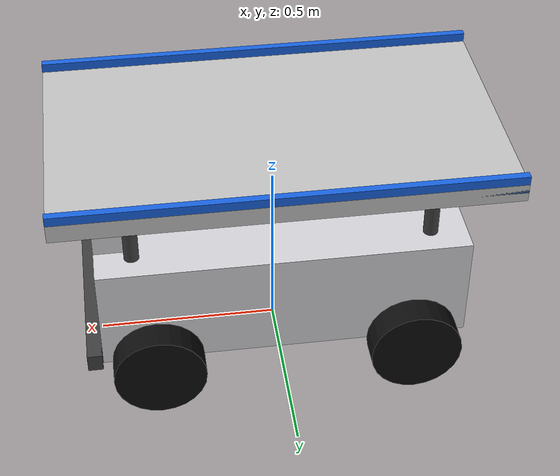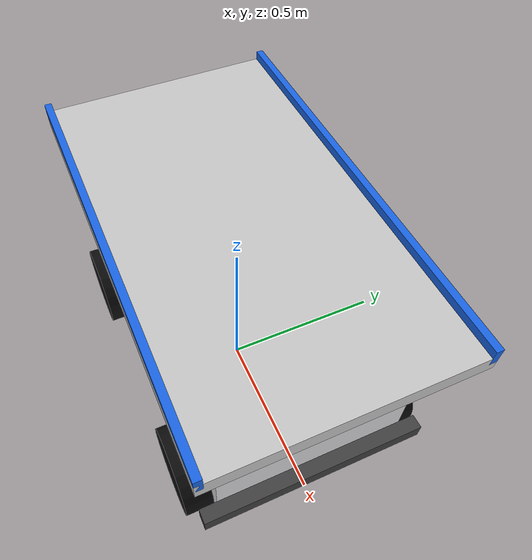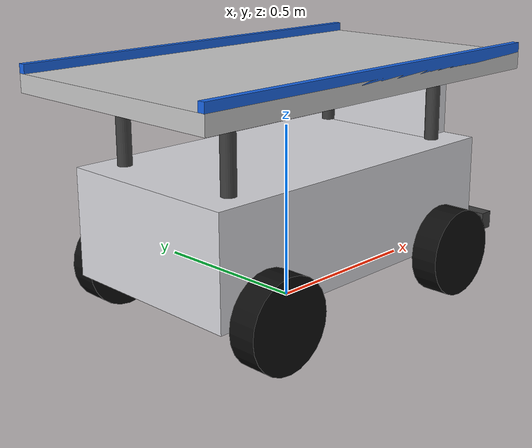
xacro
<?xml version="1.0"?>
<!-- robot_core.xacro — Corps principal du robot AMR d'entrepôt -->
<robot xmlns:xacro="http://www.ros.org/wiki/xacro">

    <!-- Châssis principal -->
    <xacro:property name="chassis_length" value="1.0"/>
    <xacro:property name="chassis_width"  value="0.55"/>
    <xacro:property name="chassis_height" value="0.30"/>
    <xacro:property name="chassis_mass"   value="40.0"/>

    <!-- Roues (4 roues motrices ou libres, type skid-steer) -->
    <xacro:property name="wheel_radius"   value="0.125"/>
    <xacro:property name="wheel_width"    value="0.08"/>
    <xacro:property name="wheel_mass"     value="3.0"/>
    <xacro:property name="wheel_x_offset" value="0.35"/>
    <xacro:property name="wheel_y_offset" value="0.315"/>

    <!-- Plateau cargo -->
    <xacro:property name="cargo_length"   value="1.20"/>
    <xacro:property name="cargo_width"    value="0.70"/>
    <xacro:property name="cargo_height"   value="0.05"/>
    <xacro:property name="cargo_mass"     value="5.0"/>

    <!-- Mât avant (support LiDAR + phares) -->
    <xacro:property name="mast_length"    value="0.10"/>
    <xacro:property name="mast_width"     value="0.35"/>
    <xacro:property name="mast_height"    value="0.15"/>
    <xacro:property name="mast_mass"      value="2.0"/>

    <!-- COULEURS (materials URDF pour RViz) -->
    <material name="light_grey">  <color rgba="0.78 0.78 0.78 1.0"/> </material>
    <material name="dark_grey">   <color rgba="0.25 0.25 0.25 1.0"/> </material>
    <material name="silver">      <color rgba="0.85 0.85 0.87 1.0"/> </material>
    <material name="black">       <color rgba="0.05 0.05 0.05 1.0"/> </material>
    <material name="red">         <color rgba="0.85 0.10 0.10 1.0"/> </material>
    <material name="yellow">      <color rgba="1.0 0.85 0.0 1.0"/>   </material>
    <material name="orange">      <color rgba="1.0 0.55 0.0 1.0"/>   </material>
    <material name="green_led">   <color rgba="0.2 0.9 0.2 1.0"/>    </material>
    <material name="blue">        <color rgba="0.1 0.4 0.9 1.0"/>    </material>

    <!-- projection au sol du robot (z = 0) -->
    <link name="base_footprint"/>

    <!-- Élevé de wheel_radius au-dessus du sol-->
    <joint name="base_joint" type="fixed">
        <parent link="base_footprint"/>
        <child link="base_link"/>
        <origin xyz="0 0 ${wheel_radius}" rpy="0 0 0"/>
    </joint>

    <link name="base_link"/>

    <!-- CHÂSSIS boîte métallique principale  -->
    <joint name="chassis_joint" type="fixed">
        <parent link="base_link"/>
        <child link="chassis_link"/>
        <origin xyz="0 0 ${chassis_height/2}" rpy="0 0 0"/>
    </joint>

    <link name="chassis_link">
        <visual>
            <origin xyz="0 0 0" rpy="0 0 0"/>
            <geometry>
                <box size="${chassis_length} ${chassis_width} ${chassis_height}"/>
            </geometry>
            <material name="silver"/>
        </visual>
        <collision>
            <origin xyz="0 0 0" rpy="0 0 0"/>
            <geometry>
                <box size="${chassis_length} ${chassis_width} ${chassis_height}"/>
            </geometry>
        </collision>
        <xacro:inertial_box mass="${chassis_mass}" x="${chassis_length}" y="${chassis_width}" z="${chassis_height}">
            <origin xyz="0 0 0" rpy="0 0 0"/>
        </xacro:inertial_box>
    </link>

    <gazebo reference="chassis_link">
        <material>Gazebo/Grey</material>
    </gazebo>

    <!-- MACROS POUR LES 4 ROUES -->
    <xacro:macro name="left_wheel" params="prefix x_offset">
        <joint name="${prefix}_left_wheel_joint" type="continuous">
            <parent link="base_link"/>
            <child link="${prefix}_left_wheel_link"/>
            <origin xyz="${x_offset} ${wheel_y_offset} 0" rpy="-1.5708 0 0"/>
            <axis xyz="0 0 1"/>
        </joint>
        <link name="${prefix}_left_wheel_link">
            <visual>
                <geometry>
                    <cylinder radius="${wheel_radius}" length="${wheel_width}"/>
                </geometry>
                <material name="black"/>
            </visual>
            <collision>
                <geometry>
                    <sphere radius="${wheel_radius}"/>
                </geometry>
            </collision>
            <xacro:inertial_cylinder mass="${wheel_mass}" length="${wheel_width}" radius="${wheel_radius}">
                <origin xyz="0 0 0" rpy="0 0 0"/>
            </xacro:inertial_cylinder>
        </link>
        <gazebo reference="${prefix}_left_wheel_link">
            <material>Gazebo/FlatBlack</material>
            <mu1>0.9</mu1>
            <mu2>0.05</mu2>
            <fdir1>1 0 0</fdir1>
        </gazebo>
    </xacro:macro>

    <xacro:macro name="right_wheel" params="prefix x_offset">
        <joint name="${prefix}_right_wheel_joint" type="continuous">
            <parent link="base_link"/>
            <child link="${prefix}_right_wheel_link"/>
            <origin xyz="${x_offset} -${wheel_y_offset} 0" rpy="1.5708 0 0"/>
            <axis xyz="0 0 -1"/>
        </joint>
        <link name="${prefix}_right_wheel_link">
            <visual>
                <geometry>
                    <cylinder radius="${wheel_radius}" length="${wheel_width}"/>
                </geometry>
                <material name="black"/>
            </visual>
            <collision>
                <geometry>
                    <sphere radius="${wheel_radius}"/>
                </geometry>
            </collision>
            <xacro:inertial_cylinder mass="${wheel_mass}" length="${wheel_width}" radius="${wheel_radius}">
                <origin xyz="0 0 0" rpy="0 0 0"/>
            </xacro:inertial_cylinder>
        </link>
        <gazebo reference="${prefix}_right_wheel_link">
            <material>Gazebo/FlatBlack</material>
            <mu1>0.9</mu1>
            <mu2>0.05</mu2>
            <fdir1>1 0 0</fdir1>
        </gazebo>
    </xacro:macro>

    <!-- Instanciation des 4 roues -->
    <xacro:left_wheel prefix="front" x_offset="${wheel_x_offset}"/>
    <xacro:left_wheel prefix="rear" x_offset="-${wheel_x_offset}"/>
    <xacro:right_wheel prefix="front" x_offset="${wheel_x_offset}"/>
    <xacro:right_wheel prefix="rear" x_offset="-${wheel_x_offset}"/>

    <!-- PILIERS DE SUPPORT — 4 montants reliant le châssis au plateau -->
    <xacro:property name="post_radius" value="0.02"/>
    <xacro:property name="post_length" value="0.20"/>
    <xacro:property name="post_z" value="${chassis_height/2 + post_length/2}"/>

    <xacro:macro name="support_post" params="prefix x y">
        <joint name="${prefix}_post_joint" type="fixed">
            <parent link="chassis_link"/>
            <child link="${prefix}_post_link"/>
            <origin xyz="${x} ${y} ${post_z}" rpy="0 0 0"/>
        </joint>
        <link name="${prefix}_post_link">
            <visual>
                <geometry>
                    <cylinder radius="${post_radius}" length="${post_length}"/>
                </geometry>
                <material name="dark_grey"/>
            </visual>
            <collision>
                <geometry>
                    <cylinder radius="${post_radius}" length="${post_length}"/>
                </geometry>
            </collision>
            <xacro:inertial_cylinder mass="0.2" length="${post_length}" radius="${post_radius}">
                <origin xyz="0 0 0" rpy="0 0 0"/>
            </xacro:inertial_cylinder>
        </link>
        <gazebo reference="${prefix}_post_link">
            <material>Gazebo/DarkGrey</material>
        </gazebo>
    </xacro:macro>

    <!-- Instanciation des 4 piliers aux coins du plateau -->
    <xacro:support_post prefix="front_left"  x="0.4"  y="0.2"/>
    <xacro:support_post prefix="front_right" x="0.4"  y="-0.2"/>
    <xacro:support_post prefix="rear_left"   x="-0.4" y="0.2"/>
    <xacro:support_post prefix="rear_right"  x="-0.4" y="-0.2"/>

    <!--  PLATEAU CARGO — surface plate pour transporter les cartons -->
    <xacro:property name="cargo_z_offset" value="${chassis_height/2 + post_length + cargo_height/2}"/>

    <joint name="cargo_platform_joint" type="fixed">
        <parent link="chassis_link"/>
        <child link="cargo_platform_link"/>
        <origin xyz="0 0 ${cargo_z_offset}" rpy="0 0 0"/>
    </joint>

    <link name="cargo_platform_link">
        <visual>
            <origin xyz="0 0 0" rpy="0 0 0"/>
            <geometry>
                <box size="${cargo_length} ${cargo_width} ${cargo_height}"/>
            </geometry>
            <material name="light_grey"/>
        </visual>
        <collision>
            <origin xyz="0 0 0" rpy="0 0 0"/>
            <geometry>
                <box size="${cargo_length} ${cargo_width} ${cargo_height}"/>
            </geometry>
        </collision>
        <xacro:inertial_box mass="${cargo_mass}" x="${cargo_length}" y="${cargo_width}" z="${cargo_height}">
            <origin xyz="0 0 0" rpy="0 0 0"/>
        </xacro:inertial_box>
    </link>

    <gazebo reference="cargo_platform_link">
        <material>Gazebo/White</material>
    </gazebo>

    <!-- RAILS LATÉRAUX — décoration sur le plateau pour correspondre à l'image -->
    <xacro:macro name="side_rail" params="prefix y_pos color">
        <joint name="${prefix}_rail_joint" type="fixed">
            <parent link="cargo_platform_link"/>
            <child link="${prefix}_rail_link"/>
            <origin xyz="0 ${y_pos} 0.025" rpy="0 0 0"/>
        </joint>
        <link name="${prefix}_rail_link">
            <visual>
                <geometry>
                    <box size="${cargo_length} 0.02 0.05"/>
                </geometry>
                <material name="${color}"/>
            </visual>
            <xacro:inertial_box mass="0.5" x="${cargo_length}" y="0.02" z="0.05">
                <origin xyz="0 0 0" rpy="0 0 0"/>
            </xacro:inertial_box>
        </link>
        <gazebo reference="${prefix}_rail_link">
            <material>Gazebo/Blue</material>
        </gazebo>
    </xacro:macro>

    <xacro:side_rail prefix="left"  y_pos="0.34" color="blue"/>
    <xacro:side_rail prefix="right" y_pos="-0.34" color="blue"/>

    <!-- PARE-CHOCS AVANT — barre de protection industrielle -->
    <joint name="front_bumper_joint" type="fixed">
        <parent link="chassis_link"/>
        <child link="front_bumper_link"/>
        <origin xyz="${chassis_length/2 + 0.02} 0 -0.10" rpy="0 0 0"/>
    </joint>

    <link name="front_bumper_link">
        <visual>
            <geometry>
                <box size="0.04 ${chassis_width + 0.10} 0.05"/>
            </geometry>
            <material name="dark_grey"/>
        </visual>
        <collision>
            <geometry>
                <box size="0.04 ${chassis_width + 0.10} 0.05"/>
            </geometry>
        </collision>
        <xacro:inertial_box mass="1.0" x="0.04" y="${chassis_width + 0.10}" z="0.05">
            <origin xyz="0 0 0" rpy="0 0 0"/>
        </xacro:inertial_box>
    </link>

    <gazebo reference="front_bumper_link">
        <material>Gazebo/DarkGrey</material>
    </gazebo>

    <!--  MÂT AVANT — structure portant le LiDAR et les phares  -->
    <joint name="front_mast_joint" type="fixed">
        <parent link="chassis_link"/>
        <child link="front_mast_link"/>
        <origin xyz="${chassis_length/2 - 0.05} 0 ${chassis_height/2 + mast_height/2}" rpy="0 0 0"/>
    </joint>

    <link name="front_mast_link">
        <visual>
            <geometry>
                <box size="${mast_length} ${mast_width} ${mast_height}"/>
            </geometry>
            <material name="silver"/>
        </visual>
        <collision>
            <geometry>
                <box size="${mast_length} ${mast_width} ${mast_height}"/>
            </geometry>
        </collision>
        <xacro:inertial_box mass="${mast_mass}" x="${mast_length}" y="${mast_width}" z="${mast_height}">
            <origin xyz="0 0 0" rpy="0 0 0"/>
        </xacro:inertial_box>
    </link>

    <gazebo reference="front_mast_link">
        <material>Gazebo/Grey</material>
    </gazebo>

    <!--  BOUTON D'ARRÊT D'URGENCE (E-Stop) — visuel décoratif-->
    <joint name="estop_joint" type="fixed">
        <parent link="front_mast_link"/>
        <child link="estop_link"/>
        <origin xyz="0.05 -0.12 0.05" rpy="0 1.5708 0"/>
    </joint>

    <link name="estop_link">
        <visual>
            <geometry>
                <cylinder radius="0.02" length="0.02"/>
            </geometry>
            <material name="red"/>
        </visual>
    </link>

    <gazebo reference="estop_link">
        <material>Gazebo/Red</material>
    </gazebo>

    <!--  PHARES AVANT — 2 lumières LED sur le mât -->
    <xacro:macro name="headlight" params="prefix y_offset">
        <joint name="${prefix}_light_joint" type="fixed">
            <parent link="front_mast_link"/>
            <child link="${prefix}_light_link"/>
            <origin xyz="0.051 ${y_offset} -0.04" rpy="0 1.5708 0"/>
        </joint>
        <link name="${prefix}_light_link">
            <visual>
                <geometry>
                    <cylinder radius="0.02" length="0.01"/>
                </geometry>
                <material name="yellow"/>
            </visual>
        </link>
        <gazebo reference="${prefix}_light_link">
            <material>Gazebo/Yellow</material>
        </gazebo>
    </xacro:macro>

    <xacro:headlight prefix="left_head"  y_offset="0.10"/>
    <xacro:headlight prefix="right_head" y_offset="-0.10"/>

    <!-- INDICATEUR LED STATUS — petit voyant vert sur le mât -->
    <joint name="status_led_joint" type="fixed">
        <parent link="front_mast_link"/>
        <child link="status_led_link"/>
        <origin xyz="0.051 0 0.05" rpy="0 1.5708 0"/>
    </joint>

    <link name="status_led_link">
        <visual>
            <geometry>
                <cylinder radius="0.01" length="0.01"/>
            </geometry>
            <material name="green_led"/>
        </visual>
    </link>

    <gazebo reference="status_led_link">
        <material>Gazebo/Green</material>
    </gazebo>

</robot>
